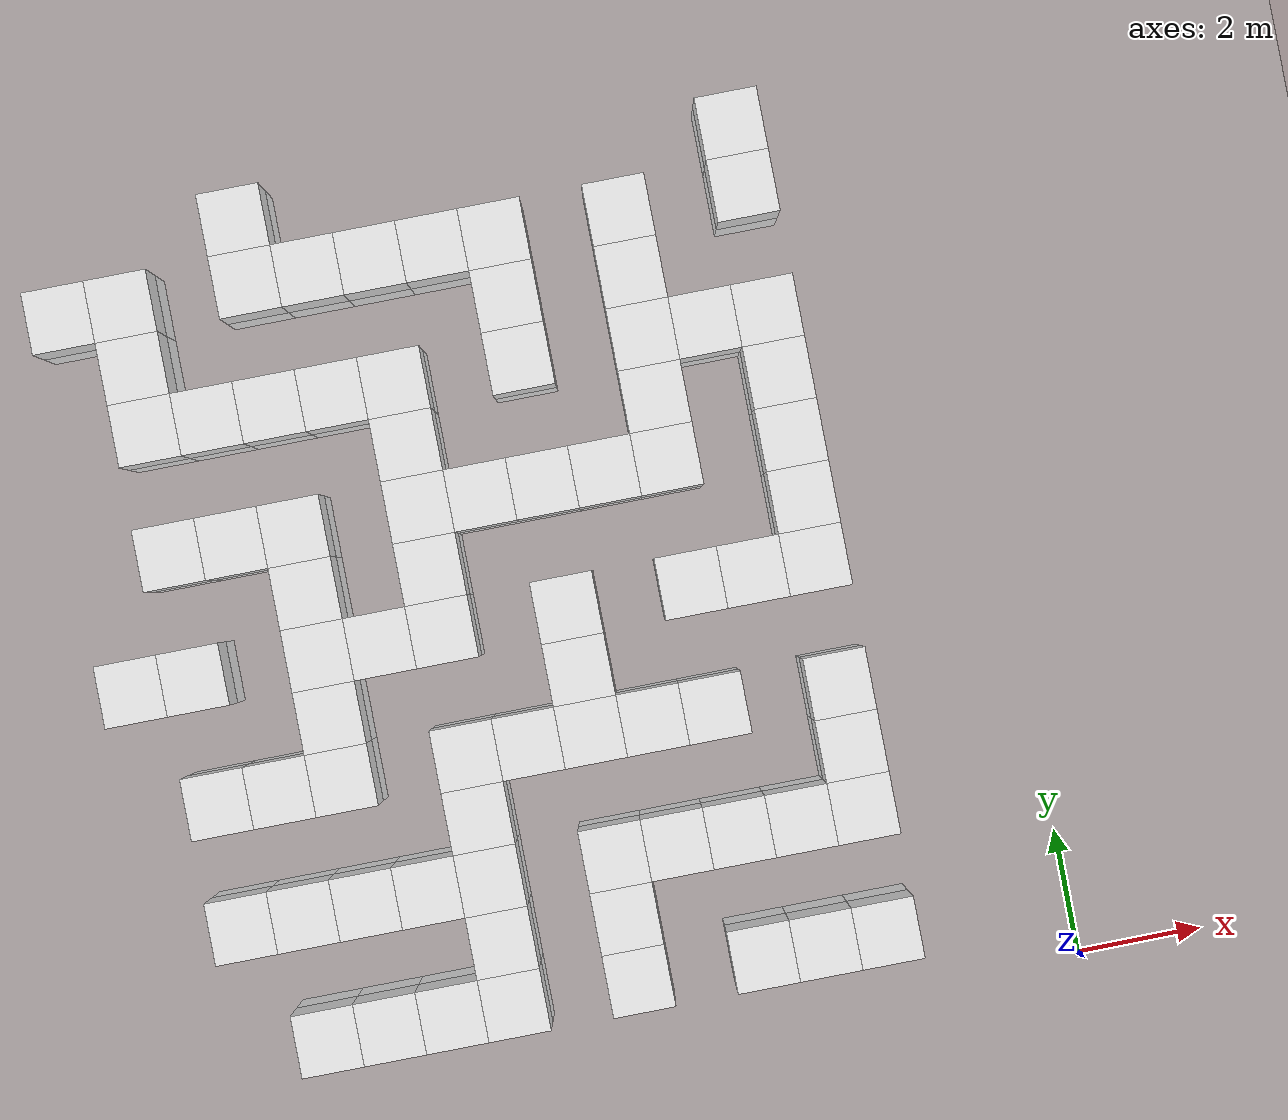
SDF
<sdf version="1.6">
 <world name="default">
  <model name="ground_plane">
   <static>1</static>
   <link name="link">
    <collision name="collision">
     <geometry><plane><normal>0 0 1</normal><size>100 100</size></plane></geometry>
     <surface><friction><ode><mu>100</mu><mu2>50</mu2></ode></friction></surface>
    </collision>
    <visual name="visual">
     <cast_shadows>0</cast_shadows>
     <geometry><plane><normal>0 0 1</normal><size>100 100</size></plane></geometry>
     <material>
      <script><uri>file://media/materials/scripts/gazebo.material</uri><name>Gazebo/Grey</name></script>
     </material>
    </visual>
   </link>
  </model>
  <model name="Unit_box_-11_14">
   <pose>-11 14 0 0 0 0</pose>
   <link name="Unit_box_-11_14_collision">
    <collision name="collision"><geometry><box><size>1 1 5</size></box></geometry></collision>
    <visual name="Unit_box_-11_14_visual">
     <geometry><box><size>1 1 5</size></box></geometry>
     <material>
      <script><name>Gazebo/White</name><uri>file://media/materials/scripts/gazebo.material</uri></script>
     </material>
    </visual>
   </link>
   <static>1</static>
  </model>
  <model name="Unit_box_-3_14">
   <pose>-3 14 0 0 0 0</pose>
   <link name="Unit_box_-3_14_collision">
    <collision name="collision"><geometry><box><size>1 1 5</size></box></geometry></collision>
    <visual name="Unit_box_-3_14_visual">
     <geometry><box><size>1 1 5</size></box></geometry>
     <material>
      <script><name>Gazebo/White</name><uri>file://media/materials/scripts/gazebo.material</uri></script>
     </material>
    </visual>
   </link>
   <static>1</static>
  </model>
  <model name="Unit_box_-14_13">
   <pose>-14 13 0 0 0 0</pose>
   <link name="Unit_box_-14_13_collision">
    <collision name="collision"><geometry><box><size>1 1 5</size></box></geometry></collision>
    <visual name="Unit_box_-14_13_visual">
     <geometry><box><size>1 1 5</size></box></geometry>
     <material>
      <script><name>Gazebo/White</name><uri>file://media/materials/scripts/gazebo.material</uri></script>
     </material>
    </visual>
   </link>
   <static>1</static>
  </model>
  <model name="Unit_box_-13_13">
   <pose>-13 13 0 0 0 0</pose>
   <link name="Unit_box_-13_13_collision">
    <collision name="collision"><geometry><box><size>1 1 5</size></box></geometry></collision>
    <visual name="Unit_box_-13_13_visual">
     <geometry><box><size>1 1 5</size></box></geometry>
     <material>
      <script><name>Gazebo/White</name><uri>file://media/materials/scripts/gazebo.material</uri></script>
     </material>
    </visual>
   </link>
   <static>1</static>
  </model>
  <model name="Unit_box_-11_13">
   <pose>-11 13 0 0 0 0</pose>
   <link name="Unit_box_-11_13_collision">
    <collision name="collision"><geometry><box><size>1 1 5</size></box></geometry></collision>
    <visual name="Unit_box_-11_13_visual">
     <geometry><box><size>1 1 5</size></box></geometry>
     <material>
      <script><name>Gazebo/White</name><uri>file://media/materials/scripts/gazebo.material</uri></script>
     </material>
    </visual>
   </link>
   <static>1</static>
  </model>
  <model name="Unit_box_-10_13">
   <pose>-10 13 0 0 0 0</pose>
   <link name="Unit_box_-10_13_collision">
    <collision name="collision"><geometry><box><size>1 1 5</size></box></geometry></collision>
    <visual name="Unit_box_-10_13_visual">
     <geometry><box><size>1 1 5</size></box></geometry>
     <material>
      <script><name>Gazebo/White</name><uri>file://media/materials/scripts/gazebo.material</uri></script>
     </material>
    </visual>
   </link>
   <static>1</static>
  </model>
  <model name="Unit_box_-9_13">
   <pose>-9 13 0 0 0 0</pose>
   <link name="Unit_box_-9_13_collision">
    <collision name="collision"><geometry><box><size>1 1 5</size></box></geometry></collision>
    <visual name="Unit_box_-9_13_visual">
     <geometry><box><size>1 1 5</size></box></geometry>
     <material>
      <script><name>Gazebo/White</name><uri>file://media/materials/scripts/gazebo.material</uri></script>
     </material>
    </visual>
   </link>
   <static>1</static>
  </model>
  <model name="Unit_box_-8_13">
   <pose>-8 13 0 0 0 0</pose>
   <link name="Unit_box_-8_13_collision">
    <collision name="collision"><geometry><box><size>1 1 5</size></box></geometry></collision>
    <visual name="Unit_box_-8_13_visual">
     <geometry><box><size>1 1 5</size></box></geometry>
     <material>
      <script><name>Gazebo/White</name><uri>file://media/materials/scripts/gazebo.material</uri></script>
     </material>
    </visual>
   </link>
   <static>1</static>
  </model>
  <model name="Unit_box_-7_13">
   <pose>-7 13 0 0 0 0</pose>
   <link name="Unit_box_-7_13_collision">
    <collision name="collision"><geometry><box><size>1 1 5</size></box></geometry></collision>
    <visual name="Unit_box_-7_13_visual">
     <geometry><box><size>1 1 5</size></box></geometry>
     <material>
      <script><name>Gazebo/White</name><uri>file://media/materials/scripts/gazebo.material</uri></script>
     </material>
    </visual>
   </link>
   <static>1</static>
  </model>
  <model name="Unit_box_-5_13">
   <pose>-5 13 0 0 0 0</pose>
   <link name="Unit_box_-5_13_collision">
    <collision name="collision"><geometry><box><size>1 1 5</size></box></geometry></collision>
    <visual name="Unit_box_-5_13_visual">
     <geometry><box><size>1 1 5</size></box></geometry>
     <material>
      <script><name>Gazebo/White</name><uri>file://media/materials/scripts/gazebo.material</uri></script>
     </material>
    </visual>
   </link>
   <static>1</static>
  </model>
  <model name="Unit_box_-3_13">
   <pose>-3 13 0 0 0 0</pose>
   <link name="Unit_box_-3_13_collision">
    <collision name="collision"><geometry><box><size>1 1 5</size></box></geometry></collision>
    <visual name="Unit_box_-3_13_visual">
     <geometry><box><size>1 1 5</size></box></geometry>
     <material>
      <script><name>Gazebo/White</name><uri>file://media/materials/scripts/gazebo.material</uri></script>
     </material>
    </visual>
   </link>
   <static>1</static>
  </model>
  <model name="Unit_box_-13_12">
   <pose>-13 12 0 0 0 0</pose>
   <link name="Unit_box_-13_12_collision">
    <collision name="collision"><geometry><box><size>1 1 5</size></box></geometry></collision>
    <visual name="Unit_box_-13_12_visual">
     <geometry><box><size>1 1 5</size></box></geometry>
     <material>
      <script><name>Gazebo/White</name><uri>file://media/materials/scripts/gazebo.material</uri></script>
     </material>
    </visual>
   </link>
   <static>1</static>
  </model>
  <model name="Unit_box_-7_12">
   <pose>-7 12 0 0 0 0</pose>
   <link name="Unit_box_-7_12_collision">
    <collision name="collision"><geometry><box><size>1 1 5</size></box></geometry></collision>
    <visual name="Unit_box_-7_12_visual">
     <geometry><box><size>1 1 5</size></box></geometry>
     <material>
      <script><name>Gazebo/White</name><uri>file://media/materials/scripts/gazebo.material</uri></script>
     </material>
    </visual>
   </link>
   <static>1</static>
  </model>
  <model name="Unit_box_-5_12">
   <pose>-5 12 0 0 0 0</pose>
   <link name="Unit_box_-5_12_collision">
    <collision name="collision"><geometry><box><size>1 1 5</size></box></geometry></collision>
    <visual name="Unit_box_-5_12_visual">
     <geometry><box><size>1 1 5</size></box></geometry>
     <material>
      <script><name>Gazebo/White</name><uri>file://media/materials/scripts/gazebo.material</uri></script>
     </material>
    </visual>
   </link>
   <static>1</static>
  </model>
  <model name="Unit_box_-13_11">
   <pose>-13 11 0 0 0 0</pose>
   <link name="Unit_box_-13_11_collision">
    <collision name="collision"><geometry><box><size>1 1 5</size></box></geometry></collision>
    <visual name="Unit_box_-13_11_visual">
     <geometry><box><size>1 1 5</size></box></geometry>
     <material>
      <script><name>Gazebo/White</name><uri>file://media/materials/scripts/gazebo.material</uri></script>
     </material>
    </visual>
   </link>
   <static>1</static>
  </model>
  <model name="Unit_box_-12_11">
   <pose>-12 11 0 0 0 0</pose>
   <link name="Unit_box_-12_11_collision">
    <collision name="collision"><geometry><box><size>1 1 5</size></box></geometry></collision>
    <visual name="Unit_box_-12_11_visual">
     <geometry><box><size>1 1 5</size></box></geometry>
     <material>
      <script><name>Gazebo/White</name><uri>file://media/materials/scripts/gazebo.material</uri></script>
     </material>
    </visual>
   </link>
   <static>1</static>
  </model>
  <model name="Unit_box_-11_11">
   <pose>-11 11 0 0 0 0</pose>
   <link name="Unit_box_-11_11_collision">
    <collision name="collision"><geometry><box><size>1 1 5</size></box></geometry></collision>
    <visual name="Unit_box_-11_11_visual">
     <geometry><box><size>1 1 5</size></box></geometry>
     <material>
      <script><name>Gazebo/White</name><uri>file://media/materials/scripts/gazebo.material</uri></script>
     </material>
    </visual>
   </link>
   <static>1</static>
  </model>
  <model name="Unit_box_-10_11">
   <pose>-10 11 0 0 0 0</pose>
   <link name="Unit_box_-10_11_collision">
    <collision name="collision"><geometry><box><size>1 1 5</size></box></geometry></collision>
    <visual name="Unit_box_-10_11_visual">
     <geometry><box><size>1 1 5</size></box></geometry>
     <material>
      <script><name>Gazebo/White</name><uri>file://media/materials/scripts/gazebo.material</uri></script>
     </material>
    </visual>
   </link>
   <static>1</static>
  </model>
  <model name="Unit_box_-9_11">
   <pose>-9 11 0 0 0 0</pose>
   <link name="Unit_box_-9_11_collision">
    <collision name="collision"><geometry><box><size>1 1 5</size></box></geometry></collision>
    <visual name="Unit_box_-9_11_visual">
     <geometry><box><size>1 1 5</size></box></geometry>
     <material>
      <script><name>Gazebo/White</name><uri>file://media/materials/scripts/gazebo.material</uri></script>
     </material>
    </visual>
   </link>
   <static>1</static>
  </model>
  <model name="Unit_box_-7_11">
   <pose>-7 11 0 0 0 0</pose>
   <link name="Unit_box_-7_11_collision">
    <collision name="collision"><geometry><box><size>1 1 5</size></box></geometry></collision>
    <visual name="Unit_box_-7_11_visual">
     <geometry><box><size>1 1 5</size></box></geometry>
     <material>
      <script><name>Gazebo/White</name><uri>file://media/materials/scripts/gazebo.material</uri></script>
     </material>
    </visual>
   </link>
   <static>1</static>
  </model>
  <model name="Unit_box_-5_11">
   <pose>-5 11 0 0 0 0</pose>
   <link name="Unit_box_-5_11_collision">
    <collision name="collision"><geometry><box><size>1 1 5</size></box></geometry></collision>
    <visual name="Unit_box_-5_11_visual">
     <geometry><box><size>1 1 5</size></box></geometry>
     <material>
      <script><name>Gazebo/White</name><uri>file://media/materials/scripts/gazebo.material</uri></script>
     </material>
    </visual>
   </link>
   <static>1</static>
  </model>
  <model name="Unit_box_-4_11">
   <pose>-4 11 0 0 0 0</pose>
   <link name="Unit_box_-4_11_collision">
    <collision name="collision"><geometry><box><size>1 1 5</size></box></geometry></collision>
    <visual name="Unit_box_-4_11_visual">
     <geometry><box><size>1 1 5</size></box></geometry>
     <material>
      <script><name>Gazebo/White</name><uri>file://media/materials/scripts/gazebo.material</uri></script>
     </material>
    </visual>
   </link>
   <static>1</static>
  </model>
  <model name="Unit_box_-3_11">
   <pose>-3 11 0 0 0 0</pose>
   <link name="Unit_box_-3_11_collision">
    <collision name="collision"><geometry><box><size>1 1 5</size></box></geometry></collision>
    <visual name="Unit_box_-3_11_visual">
     <geometry><box><size>1 1 5</size></box></geometry>
     <material>
      <script><name>Gazebo/White</name><uri>file://media/materials/scripts/gazebo.material</uri></script>
     </material>
    </visual>
   </link>
   <static>1</static>
  </model>
  <model name="Unit_box_-9_10">
   <pose>-9 10 0 0 0 0</pose>
   <link name="Unit_box_-9_10_collision">
    <collision name="collision"><geometry><box><size>1 1 5</size></box></geometry></collision>
    <visual name="Unit_box_-9_10_visual">
     <geometry><box><size>1 1 5</size></box></geometry>
     <material>
      <script><name>Gazebo/White</name><uri>file://media/materials/scripts/gazebo.material</uri></script>
     </material>
    </visual>
   </link>
   <static>1</static>
  </model>
  <model name="Unit_box_-5_10">
   <pose>-5 10 0 0 0 0</pose>
   <link name="Unit_box_-5_10_collision">
    <collision name="collision"><geometry><box><size>1 1 5</size></box></geometry></collision>
    <visual name="Unit_box_-5_10_visual">
     <geometry><box><size>1 1 5</size></box></geometry>
     <material>
      <script><name>Gazebo/White</name><uri>file://media/materials/scripts/gazebo.material</uri></script>
     </material>
    </visual>
   </link>
   <static>1</static>
  </model>
  <model name="Unit_box_-3_10">
   <pose>-3 10 0 0 0 0</pose>
   <link name="Unit_box_-3_10_collision">
    <collision name="collision"><geometry><box><size>1 1 5</size></box></geometry></collision>
    <visual name="Unit_box_-3_10_visual">
     <geometry><box><size>1 1 5</size></box></geometry>
     <material>
      <script><name>Gazebo/White</name><uri>file://media/materials/scripts/gazebo.material</uri></script>
     </material>
    </visual>
   </link>
   <static>1</static>
  </model>
  <model name="Unit_box_-13_9">
   <pose>-13 9 0 0 0 0</pose>
   <link name="Unit_box_-13_9_collision">
    <collision name="collision"><geometry><box><size>1 1 5</size></box></geometry></collision>
    <visual name="Unit_box_-13_9_visual">
     <geometry><box><size>1 1 5</size></box></geometry>
     <material>
      <script><name>Gazebo/White</name><uri>file://media/materials/scripts/gazebo.material</uri></script>
     </material>
    </visual>
   </link>
   <static>1</static>
  </model>
  <model name="Unit_box_-12_9">
   <pose>-12 9 0 0 0 0</pose>
   <link name="Unit_box_-12_9_collision">
    <collision name="collision"><geometry><box><size>1 1 5</size></box></geometry></collision>
    <visual name="Unit_box_-12_9_visual">
     <geometry><box><size>1 1 5</size></box></geometry>
     <material>
      <script><name>Gazebo/White</name><uri>file://media/materials/scripts/gazebo.material</uri></script>
     </material>
    </visual>
   </link>
   <static>1</static>
  </model>
  <model name="Unit_box_-11_9">
   <pose>-11 9 0 0 0 0</pose>
   <link name="Unit_box_-11_9_collision">
    <collision name="collision"><geometry><box><size>1 1 5</size></box></geometry></collision>
    <visual name="Unit_box_-11_9_visual">
     <geometry><box><size>1 1 5</size></box></geometry>
     <material>
      <script><name>Gazebo/White</name><uri>file://media/materials/scripts/gazebo.material</uri></script>
     </material>
    </visual>
   </link>
   <static>1</static>
  </model>
  <model name="Unit_box_-9_9">
   <pose>-9 9 0 0 0 0</pose>
   <link name="Unit_box_-9_9_collision">
    <collision name="collision"><geometry><box><size>1 1 5</size></box></geometry></collision>
    <visual name="Unit_box_-9_9_visual">
     <geometry><box><size>1 1 5</size></box></geometry>
     <material>
      <script><name>Gazebo/White</name><uri>file://media/materials/scripts/gazebo.material</uri></script>
     </material>
    </visual>
   </link>
   <static>1</static>
  </model>
  <model name="Unit_box_-8_9">
   <pose>-8 9 0 0 0 0</pose>
   <link name="Unit_box_-8_9_collision">
    <collision name="collision"><geometry><box><size>1 1 5</size></box></geometry></collision>
    <visual name="Unit_box_-8_9_visual">
     <geometry><box><size>1 1 5</size></box></geometry>
     <material>
      <script><name>Gazebo/White</name><uri>file://media/materials/scripts/gazebo.material</uri></script>
     </material>
    </visual>
   </link>
   <static>1</static>
  </model>
  <model name="Unit_box_-7_9">
   <pose>-7 9 0 0 0 0</pose>
   <link name="Unit_box_-7_9_collision">
    <collision name="collision"><geometry><box><size>1 1 5</size></box></geometry></collision>
    <visual name="Unit_box_-7_9_visual">
     <geometry><box><size>1 1 5</size></box></geometry>
     <material>
      <script><name>Gazebo/White</name><uri>file://media/materials/scripts/gazebo.material</uri></script>
     </material>
    </visual>
   </link>
   <static>1</static>
  </model>
  <model name="Unit_box_-6_9">
   <pose>-6 9 0 0 0 0</pose>
   <link name="Unit_box_-6_9_collision">
    <collision name="collision"><geometry><box><size>1 1 5</size></box></geometry></collision>
    <visual name="Unit_box_-6_9_visual">
     <geometry><box><size>1 1 5</size></box></geometry>
     <material>
      <script><name>Gazebo/White</name><uri>file://media/materials/scripts/gazebo.material</uri></script>
     </material>
    </visual>
   </link>
   <static>1</static>
  </model>
  <model name="Unit_box_-5_9">
   <pose>-5 9 0 0 0 0</pose>
   <link name="Unit_box_-5_9_collision">
    <collision name="collision"><geometry><box><size>1 1 5</size></box></geometry></collision>
    <visual name="Unit_box_-5_9_visual">
     <geometry><box><size>1 1 5</size></box></geometry>
     <material>
      <script><name>Gazebo/White</name><uri>file://media/materials/scripts/gazebo.material</uri></script>
     </material>
    </visual>
   </link>
   <static>1</static>
  </model>
  <model name="Unit_box_-3_9">
   <pose>-3 9 0 0 0 0</pose>
   <link name="Unit_box_-3_9_collision">
    <collision name="collision"><geometry><box><size>1 1 5</size></box></geometry></collision>
    <visual name="Unit_box_-3_9_visual">
     <geometry><box><size>1 1 5</size></box></geometry>
     <material>
      <script><name>Gazebo/White</name><uri>file://media/materials/scripts/gazebo.material</uri></script>
     </material>
    </visual>
   </link>
   <static>1</static>
  </model>
  <model name="Unit_box_-11_8">
   <pose>-11 8 0 0 0 0</pose>
   <link name="Unit_box_-11_8_collision">
    <collision name="collision"><geometry><box><size>1 1 5</size></box></geometry></collision>
    <visual name="Unit_box_-11_8_visual">
     <geometry><box><size>1 1 5</size></box></geometry>
     <material>
      <script><name>Gazebo/White</name><uri>file://media/materials/scripts/gazebo.material</uri></script>
     </material>
    </visual>
   </link>
   <static>1</static>
  </model>
  <model name="Unit_box_-9_8">
   <pose>-9 8 0 0 0 0</pose>
   <link name="Unit_box_-9_8_collision">
    <collision name="collision"><geometry><box><size>1 1 5</size></box></geometry></collision>
    <visual name="Unit_box_-9_8_visual">
     <geometry><box><size>1 1 5</size></box></geometry>
     <material>
      <script><name>Gazebo/White</name><uri>file://media/materials/scripts/gazebo.material</uri></script>
     </material>
    </visual>
   </link>
   <static>1</static>
  </model>
  <model name="Unit_box_-3_8">
   <pose>-3 8 0 0 0 0</pose>
   <link name="Unit_box_-3_8_collision">
    <collision name="collision"><geometry><box><size>1 1 5</size></box></geometry></collision>
    <visual name="Unit_box_-3_8_visual">
     <geometry><box><size>1 1 5</size></box></geometry>
     <material>
      <script><name>Gazebo/White</name><uri>file://media/materials/scripts/gazebo.material</uri></script>
     </material>
    </visual>
   </link>
   <static>1</static>
  </model>
  <model name="Unit_box_-14_7">
   <pose>-14 7 0 0 0 0</pose>
   <link name="Unit_box_-14_7_collision">
    <collision name="collision"><geometry><box><size>1 1 5</size></box></geometry></collision>
    <visual name="Unit_box_-14_7_visual">
     <geometry><box><size>1 1 5</size></box></geometry>
     <material>
      <script><name>Gazebo/White</name><uri>file://media/materials/scripts/gazebo.material</uri></script>
     </material>
    </visual>
   </link>
   <static>1</static>
  </model>
  <model name="Unit_box_-13_7">
   <pose>-13 7 0 0 0 0</pose>
   <link name="Unit_box_-13_7_collision">
    <collision name="collision"><geometry><box><size>1 1 5</size></box></geometry></collision>
    <visual name="Unit_box_-13_7_visual">
     <geometry><box><size>1 1 5</size></box></geometry>
     <material>
      <script><name>Gazebo/White</name><uri>file://media/materials/scripts/gazebo.material</uri></script>
     </material>
    </visual>
   </link>
   <static>1</static>
  </model>
  <model name="Unit_box_-11_7">
   <pose>-11 7 0 0 0 0</pose>
   <link name="Unit_box_-11_7_collision">
    <collision name="collision"><geometry><box><size>1 1 5</size></box></geometry></collision>
    <visual name="Unit_box_-11_7_visual">
     <geometry><box><size>1 1 5</size></box></geometry>
     <material>
      <script><name>Gazebo/White</name><uri>file://media/materials/scripts/gazebo.material</uri></script>
     </material>
    </visual>
   </link>
   <static>1</static>
  </model>
  <model name="Unit_box_-10_7">
   <pose>-10 7 0 0 0 0</pose>
   <link name="Unit_box_-10_7_collision">
    <collision name="collision"><geometry><box><size>1 1 5</size></box></geometry></collision>
    <visual name="Unit_box_-10_7_visual">
     <geometry><box><size>1 1 5</size></box></geometry>
     <material>
      <script><name>Gazebo/White</name><uri>file://media/materials/scripts/gazebo.material</uri></script>
     </material>
    </visual>
   </link>
   <static>1</static>
  </model>
  <model name="Unit_box_-9_7">
   <pose>-9 7 0 0 0 0</pose>
   <link name="Unit_box_-9_7_collision">
    <collision name="collision"><geometry><box><size>1 1 5</size></box></geometry></collision>
    <visual name="Unit_box_-9_7_visual">
     <geometry><box><size>1 1 5</size></box></geometry>
     <material>
      <script><name>Gazebo/White</name><uri>file://media/materials/scripts/gazebo.material</uri></script>
     </material>
    </visual>
   </link>
   <static>1</static>
  </model>
  <model name="Unit_box_-7_7">
   <pose>-7 7 0 0 0 0</pose>
   <link name="Unit_box_-7_7_collision">
    <collision name="collision"><geometry><box><size>1 1 5</size></box></geometry></collision>
    <visual name="Unit_box_-7_7_visual">
     <geometry><box><size>1 1 5</size></box></geometry>
     <material>
      <script><name>Gazebo/White</name><uri>file://media/materials/scripts/gazebo.material</uri></script>
     </material>
    </visual>
   </link>
   <static>1</static>
  </model>
  <model name="Unit_box_-5_7">
   <pose>-5 7 0 0 0 0</pose>
   <link name="Unit_box_-5_7_collision">
    <collision name="collision"><geometry><box><size>1 1 5</size></box></geometry></collision>
    <visual name="Unit_box_-5_7_visual">
     <geometry><box><size>1 1 5</size></box></geometry>
     <material>
      <script><name>Gazebo/White</name><uri>file://media/materials/scripts/gazebo.material</uri></script>
     </material>
    </visual>
   </link>
   <static>1</static>
  </model>
  <model name="Unit_box_-4_7">
   <pose>-4 7 0 0 0 0</pose>
   <link name="Unit_box_-4_7_collision">
    <collision name="collision"><geometry><box><size>1 1 5</size></box></geometry></collision>
    <visual name="Unit_box_-4_7_visual">
     <geometry><box><size>1 1 5</size></box></geometry>
     <material>
      <script><name>Gazebo/White</name><uri>file://media/materials/scripts/gazebo.material</uri></script>
     </material>
    </visual>
   </link>
   <static>1</static>
  </model>
  <model name="Unit_box_-3_7">
   <pose>-3 7 0 0 0 0</pose>
   <link name="Unit_box_-3_7_collision">
    <collision name="collision"><geometry><box><size>1 1 5</size></box></geometry></collision>
    <visual name="Unit_box_-3_7_visual">
     <geometry><box><size>1 1 5</size></box></geometry>
     <material>
      <script><name>Gazebo/White</name><uri>file://media/materials/scripts/gazebo.material</uri></script>
     </material>
    </visual>
   </link>
   <static>1</static>
  </model>
  <model name="Unit_box_-11_6">
   <pose>-11 6 0 0 0 0</pose>
   <link name="Unit_box_-11_6_collision">
    <collision name="collision"><geometry><box><size>1 1 5</size></box></geometry></collision>
    <visual name="Unit_box_-11_6_visual">
     <geometry><box><size>1 1 5</size></box></geometry>
     <material>
      <script><name>Gazebo/White</name><uri>file://media/materials/scripts/gazebo.material</uri></script>
     </material>
    </visual>
   </link>
   <static>1</static>
  </model>
  <model name="Unit_box_-7_6">
   <pose>-7 6 0 0 0 0</pose>
   <link name="Unit_box_-7_6_collision">
    <collision name="collision"><geometry><box><size>1 1 5</size></box></geometry></collision>
    <visual name="Unit_box_-7_6_visual">
     <geometry><box><size>1 1 5</size></box></geometry>
     <material>
      <script><name>Gazebo/White</name><uri>file://media/materials/scripts/gazebo.material</uri></script>
     </material>
    </visual>
   </link>
   <static>1</static>
  </model>
  <model name="Unit_box_-13_5">
   <pose>-13 5 0 0 0 0</pose>
   <link name="Unit_box_-13_5_collision">
    <collision name="collision"><geometry><box><size>1 1 5</size></box></geometry></collision>
    <visual name="Unit_box_-13_5_visual">
     <geometry><box><size>1 1 5</size></box></geometry>
     <material>
      <script><name>Gazebo/White</name><uri>file://media/materials/scripts/gazebo.material</uri></script>
     </material>
    </visual>
   </link>
   <static>1</static>
  </model>
  <model name="Unit_box_-12_5">
   <pose>-12 5 0 0 0 0</pose>
   <link name="Unit_box_-12_5_collision">
    <collision name="collision"><geometry><box><size>1 1 5</size></box></geometry></collision>
    <visual name="Unit_box_-12_5_visual">
     <geometry><box><size>1 1 5</size></box></geometry>
     <material>
      <script><name>Gazebo/White</name><uri>file://media/materials/scripts/gazebo.material</uri></script>
     </material>
    </visual>
   </link>
   <static>1</static>
  </model>
  <model name="Unit_box_-11_5">
   <pose>-11 5 0 0 0 0</pose>
   <link name="Unit_box_-11_5_collision">
    <collision name="collision"><geometry><box><size>1 1 5</size></box></geometry></collision>
    <visual name="Unit_box_-11_5_visual">
     <geometry><box><size>1 1 5</size></box></geometry>
     <material>
      <script><name>Gazebo/White</name><uri>file://media/materials/scripts/gazebo.material</uri></script>
     </material>
    </visual>
   </link>
   <static>1</static>
  </model>
  <model name="Unit_box_-9_5">
   <pose>-9 5 0 0 0 0</pose>
   <link name="Unit_box_-9_5_collision">
    <collision name="collision"><geometry><box><size>1 1 5</size></box></geometry></collision>
    <visual name="Unit_box_-9_5_visual">
     <geometry><box><size>1 1 5</size></box></geometry>
     <material>
      <script><name>Gazebo/White</name><uri>file://media/materials/scripts/gazebo.material</uri></script>
     </material>
    </visual>
   </link>
   <static>1</static>
  </model>
  <model name="Unit_box_-8_5">
   <pose>-8 5 0 0 0 0</pose>
   <link name="Unit_box_-8_5_collision">
    <collision name="collision"><geometry><box><size>1 1 5</size></box></geometry></collision>
    <visual name="Unit_box_-8_5_visual">
     <geometry><box><size>1 1 5</size></box></geometry>
     <material>
      <script><name>Gazebo/White</name><uri>file://media/materials/scripts/gazebo.material</uri></script>
     </material>
    </visual>
   </link>
   <static>1</static>
  </model>
  <model name="Unit_box_-7_5">
   <pose>-7 5 0 0 0 0</pose>
   <link name="Unit_box_-7_5_collision">
    <collision name="collision"><geometry><box><size>1 1 5</size></box></geometry></collision>
    <visual name="Unit_box_-7_5_visual">
     <geometry><box><size>1 1 5</size></box></geometry>
     <material>
      <script><name>Gazebo/White</name><uri>file://media/materials/scripts/gazebo.material</uri></script>
     </material>
    </visual>
   </link>
   <static>1</static>
  </model>
  <model name="Unit_box_-6_5">
   <pose>-6 5 0 0 0 0</pose>
   <link name="Unit_box_-6_5_collision">
    <collision name="collision"><geometry><box><size>1 1 5</size></box></geometry></collision>
    <visual name="Unit_box_-6_5_visual">
     <geometry><box><size>1 1 5</size></box></geometry>
     <material>
      <script><name>Gazebo/White</name><uri>file://media/materials/scripts/gazebo.material</uri></script>
     </material>
    </visual>
   </link>
   <static>1</static>
  </model>
  <model name="Unit_box_-5_5">
   <pose>-5 5 0 0 0 0</pose>
   <link name="Unit_box_-5_5_collision">
    <collision name="collision"><geometry><box><size>1 1 5</size></box></geometry></collision>
    <visual name="Unit_box_-5_5_visual">
     <geometry><box><size>1 1 5</size></box></geometry>
     <material>
      <script><name>Gazebo/White</name><uri>file://media/materials/scripts/gazebo.material</uri></script>
     </material>
    </visual>
   </link>
   <static>1</static>
  </model>
  <model name="Unit_box_-3_5">
   <pose>-3 5 0 0 0 0</pose>
   <link name="Unit_box_-3_5_collision">
    <collision name="collision"><geometry><box><size>1 1 5</size></box></geometry></collision>
    <visual name="Unit_box_-3_5_visual">
     <geometry><box><size>1 1 5</size></box></geometry>
     <material>
      <script><name>Gazebo/White</name><uri>file://media/materials/scripts/gazebo.material</uri></script>
     </material>
    </visual>
   </link>
   <static>1</static>
  </model>
  <model name="Unit_box_-9_4">
   <pose>-9 4 0 0 0 0</pose>
   <link name="Unit_box_-9_4_collision">
    <collision name="collision"><geometry><box><size>1 1 5</size></box></geometry></collision>
    <visual name="Unit_box_-9_4_visual">
     <geometry><box><size>1 1 5</size></box></geometry>
     <material>
      <script><name>Gazebo/White</name><uri>file://media/materials/scripts/gazebo.material</uri></script>
     </material>
    </visual>
   </link>
   <static>1</static>
  </model>
  <model name="Unit_box_-3_4">
   <pose>-3 4 0 0 0 0</pose>
   <link name="Unit_box_-3_4_collision">
    <collision name="collision"><geometry><box><size>1 1 5</size></box></geometry></collision>
    <visual name="Unit_box_-3_4_visual">
     <geometry><box><size>1 1 5</size></box></geometry>
     <material>
      <script><name>Gazebo/White</name><uri>file://media/materials/scripts/gazebo.material</uri></script>
     </material>
    </visual>
   </link>
   <static>1</static>
  </model>
  <model name="Unit_box_-13_3">
   <pose>-13 3 0 0 0 0</pose>
   <link name="Unit_box_-13_3_collision">
    <collision name="collision"><geometry><box><size>1 1 5</size></box></geometry></collision>
    <visual name="Unit_box_-13_3_visual">
     <geometry><box><size>1 1 5</size></box></geometry>
     <material>
      <script><name>Gazebo/White</name><uri>file://media/materials/scripts/gazebo.material</uri></script>
     </material>
    </visual>
   </link>
   <static>1</static>
  </model>
  <model name="Unit_box_-12_3">
   <pose>-12 3 0 0 0 0</pose>
   <link name="Unit_box_-12_3_collision">
    <collision name="collision"><geometry><box><size>1 1 5</size></box></geometry></collision>
    <visual name="Unit_box_-12_3_visual">
     <geometry><box><size>1 1 5</size></box></geometry>
     <material>
      <script><name>Gazebo/White</name><uri>file://media/materials/scripts/gazebo.material</uri></script>
     </material>
    </visual>
   </link>
   <static>1</static>
  </model>
  <model name="Unit_box_-11_3">
   <pose>-11 3 0 0 0 0</pose>
   <link name="Unit_box_-11_3_collision">
    <collision name="collision"><geometry><box><size>1 1 5</size></box></geometry></collision>
    <visual name="Unit_box_-11_3_visual">
     <geometry><box><size>1 1 5</size></box></geometry>
     <material>
      <script><name>Gazebo/White</name><uri>file://media/materials/scripts/gazebo.material</uri></script>
     </material>
    </visual>
   </link>
   <static>1</static>
  </model>
  <model name="Unit_box_-10_3">
   <pose>-10 3 0 0 0 0</pose>
   <link name="Unit_box_-10_3_collision">
    <collision name="collision"><geometry><box><size>1 1 5</size></box></geometry></collision>
    <visual name="Unit_box_-10_3_visual">
     <geometry><box><size>1 1 5</size></box></geometry>
     <material>
      <script><name>Gazebo/White</name><uri>file://media/materials/scripts/gazebo.material</uri></script>
     </material>
    </visual>
   </link>
   <static>1</static>
  </model>
  <model name="Unit_box_-9_3">
   <pose>-9 3 0 0 0 0</pose>
   <link name="Unit_box_-9_3_collision">
    <collision name="collision"><geometry><box><size>1 1 5</size></box></geometry></collision>
    <visual name="Unit_box_-9_3_visual">
     <geometry><box><size>1 1 5</size></box></geometry>
     <material>
      <script><name>Gazebo/White</name><uri>file://media/materials/scripts/gazebo.material</uri></script>
     </material>
    </visual>
   </link>
   <static>1</static>
  </model>
  <model name="Unit_box_-7_3">
   <pose>-7 3 0 0 0 0</pose>
   <link name="Unit_box_-7_3_collision">
    <collision name="collision"><geometry><box><size>1 1 5</size></box></geometry></collision>
    <visual name="Unit_box_-7_3_visual">
     <geometry><box><size>1 1 5</size></box></geometry>
     <material>
      <script><name>Gazebo/White</name><uri>file://media/materials/scripts/gazebo.material</uri></script>
     </material>
    </visual>
   </link>
   <static>1</static>
  </model>
  <model name="Unit_box_-6_3">
   <pose>-6 3 0 0 0 0</pose>
   <link name="Unit_box_-6_3_collision">
    <collision name="collision"><geometry><box><size>1 1 5</size></box></geometry></collision>
    <visual name="Unit_box_-6_3_visual">
     <geometry><box><size>1 1 5</size></box></geometry>
     <material>
      <script><name>Gazebo/White</name><uri>file://media/materials/scripts/gazebo.material</uri></script>
     </material>
    </visual>
   </link>
   <static>1</static>
  </model>
  <model name="Unit_box_-5_3">
   <pose>-5 3 0 0 0 0</pose>
   <link name="Unit_box_-5_3_collision">
    <collision name="collision"><geometry><box><size>1 1 5</size></box></geometry></collision>
    <visual name="Unit_box_-5_3_visual">
     <geometry><box><size>1 1 5</size></box></geometry>
     <material>
      <script><name>Gazebo/White</name><uri>file://media/materials/scripts/gazebo.material</uri></script>
     </material>
    </visual>
   </link>
   <static>1</static>
  </model>
  <model name="Unit_box_-4_3">
   <pose>-4 3 0 0 0 0</pose>
   <link name="Unit_box_-4_3_collision">
    <collision name="collision"><geometry><box><size>1 1 5</size></box></geometry></collision>
    <visual name="Unit_box_-4_3_visual">
     <geometry><box><size>1 1 5</size></box></geometry>
     <material>
      <script><name>Gazebo/White</name><uri>file://media/materials/scripts/gazebo.material</uri></script>
     </material>
    </visual>
   </link>
   <static>1</static>
  </model>
  <model name="Unit_box_-3_3">
   <pose>-3 3 0 0 0 0</pose>
   <link name="Unit_box_-3_3_collision">
    <collision name="collision"><geometry><box><size>1 1 5</size></box></geometry></collision>
    <visual name="Unit_box_-3_3_visual">
     <geometry><box><size>1 1 5</size></box></geometry>
     <material>
      <script><name>Gazebo/White</name><uri>file://media/materials/scripts/gazebo.material</uri></script>
     </material>
    </visual>
   </link>
   <static>1</static>
  </model>
  <model name="Unit_box_-9_2">
   <pose>-9 2 0 0 0 0</pose>
   <link name="Unit_box_-9_2_collision">
    <collision name="collision"><geometry><box><size>1 1 5</size></box></geometry></collision>
    <visual name="Unit_box_-9_2_visual">
     <geometry><box><size>1 1 5</size></box></geometry>
     <material>
      <script><name>Gazebo/White</name><uri>file://media/materials/scripts/gazebo.material</uri></script>
     </material>
    </visual>
   </link>
   <static>1</static>
  </model>
  <model name="Unit_box_-7_2">
   <pose>-7 2 0 0 0 0</pose>
   <link name="Unit_box_-7_2_collision">
    <collision name="collision"><geometry><box><size>1 1 5</size></box></geometry></collision>
    <visual name="Unit_box_-7_2_visual">
     <geometry><box><size>1 1 5</size></box></geometry>
     <material>
      <script><name>Gazebo/White</name><uri>file://media/materials/scripts/gazebo.material</uri></script>
     </material>
    </visual>
   </link>
   <static>1</static>
  </model>
  <model name="Unit_box_-12_1">
   <pose>-12 1 0 0 0 0</pose>
   <link name="Unit_box_-12_1_collision">
    <collision name="collision"><geometry><box><size>1 1 5</size></box></geometry></collision>
    <visual name="Unit_box_-12_1_visual">
     <geometry><box><size>1 1 5</size></box></geometry>
     <material>
      <script><name>Gazebo/White</name><uri>file://media/materials/scripts/gazebo.material</uri></script>
     </material>
    </visual>
   </link>
   <static>1</static>
  </model>
  <model name="Unit_box_-11_1">
   <pose>-11 1 0 0 0 0</pose>
   <link name="Unit_box_-11_1_collision">
    <collision name="collision"><geometry><box><size>1 1 5</size></box></geometry></collision>
    <visual name="Unit_box_-11_1_visual">
     <geometry><box><size>1 1 5</size></box></geometry>
     <material>
      <script><name>Gazebo/White</name><uri>file://media/materials/scripts/gazebo.material</uri></script>
     </material>
    </visual>
   </link>
   <static>1</static>
  </model>
  <model name="Unit_box_-10_1">
   <pose>-10 1 0 0 0 0</pose>
   <link name="Unit_box_-10_1_collision">
    <collision name="collision"><geometry><box><size>1 1 5</size></box></geometry></collision>
    <visual name="Unit_box_-10_1_visual">
     <geometry><box><size>1 1 5</size></box></geometry>
     <material>
      <script><name>Gazebo/White</name><uri>file://media/materials/scripts/gazebo.material</uri></script>
     </material>
    </visual>
   </link>
   <static>1</static>
  </model>
  <model name="Unit_box_-9_1">
   <pose>-9 1 0 0 0 0</pose>
   <link name="Unit_box_-9_1_collision">
    <collision name="collision"><geometry><box><size>1 1 5</size></box></geometry></collision>
    <visual name="Unit_box_-9_1_visual">
     <geometry><box><size>1 1 5</size></box></geometry>
     <material>
      <script><name>Gazebo/White</name><uri>file://media/materials/scripts/gazebo.material</uri></script>
     </material>
    </visual>
   </link>
   <static>1</static>
  </model>
  <model name="Unit_box_-7_1">
   <pose>-7 1 0 0 0 0</pose>
   <link name="Unit_box_-7_1_collision">
    <collision name="collision"><geometry><box><size>1 1 5</size></box></geometry></collision>
    <visual name="Unit_box_-7_1_visual">
     <geometry><box><size>1 1 5</size></box></geometry>
     <material>
      <script><name>Gazebo/White</name><uri>file://media/materials/scripts/gazebo.material</uri></script>
     </material>
    </visual>
   </link>
   <static>1</static>
  </model>
  <model name="Unit_box_-5_1">
   <pose>-5 1 0 0 0 0</pose>
   <link name="Unit_box_-5_1_collision">
    <collision name="collision"><geometry><box><size>1 1 5</size></box></geometry></collision>
    <visual name="Unit_box_-5_1_visual">
     <geometry><box><size>1 1 5</size></box></geometry>
     <material>
      <script><name>Gazebo/White</name><uri>file://media/materials/scripts/gazebo.material</uri></script>
     </material>
    </visual>
   </link>
   <static>1</static>
  </model>
  <model name="Unit_box_-4_1">
   <pose>-4 1 0 0 0 0</pose>
   <link name="Unit_box_-4_1_collision">
    <collision name="collision"><geometry><box><size>1 1 5</size></box></geometry></collision>
    <visual name="Unit_box_-4_1_visual">
     <geometry><box><size>1 1 5</size></box></geometry>
     <material>
      <script><name>Gazebo/White</name><uri>file://media/materials/scripts/gazebo.material</uri></script>
     </material>
    </visual>
   </link>
   <static>1</static>
  </model>
  <model name="Unit_box_-3_1">
   <pose>-3 1 0 0 0 0</pose>
   <link name="Unit_box_-3_1_collision">
    <collision name="collision"><geometry><box><size>1 1 5</size></box></geometry></collision>
    <visual name="Unit_box_-3_1_visual">
     <geometry><box><size>1 1 5</size></box></geometry>
     <material>
      <script><name>Gazebo/White</name><uri>file://media/materials/scripts/gazebo.material</uri></script>
     </material>
    </visual>
   </link>
   <static>1</static>
  </model>
 </world>
</sdf>
